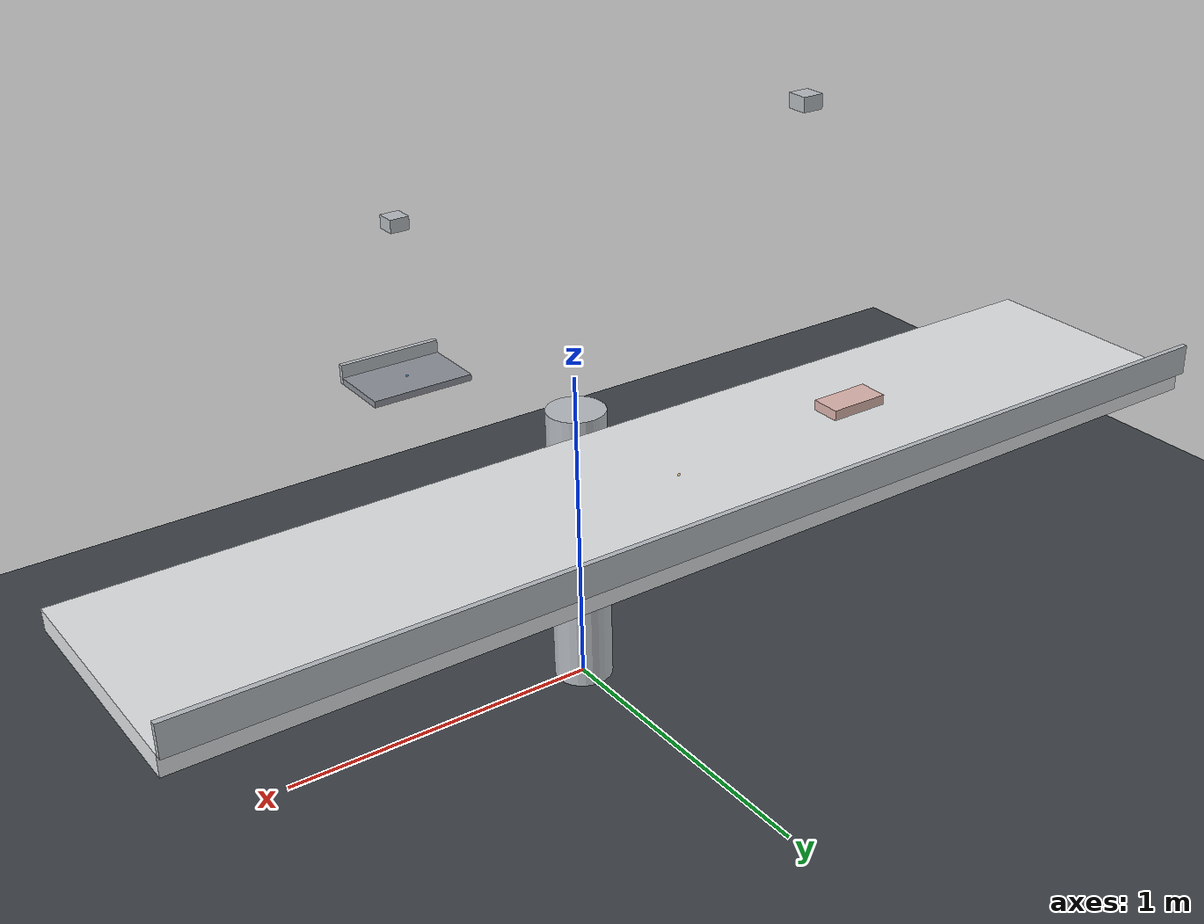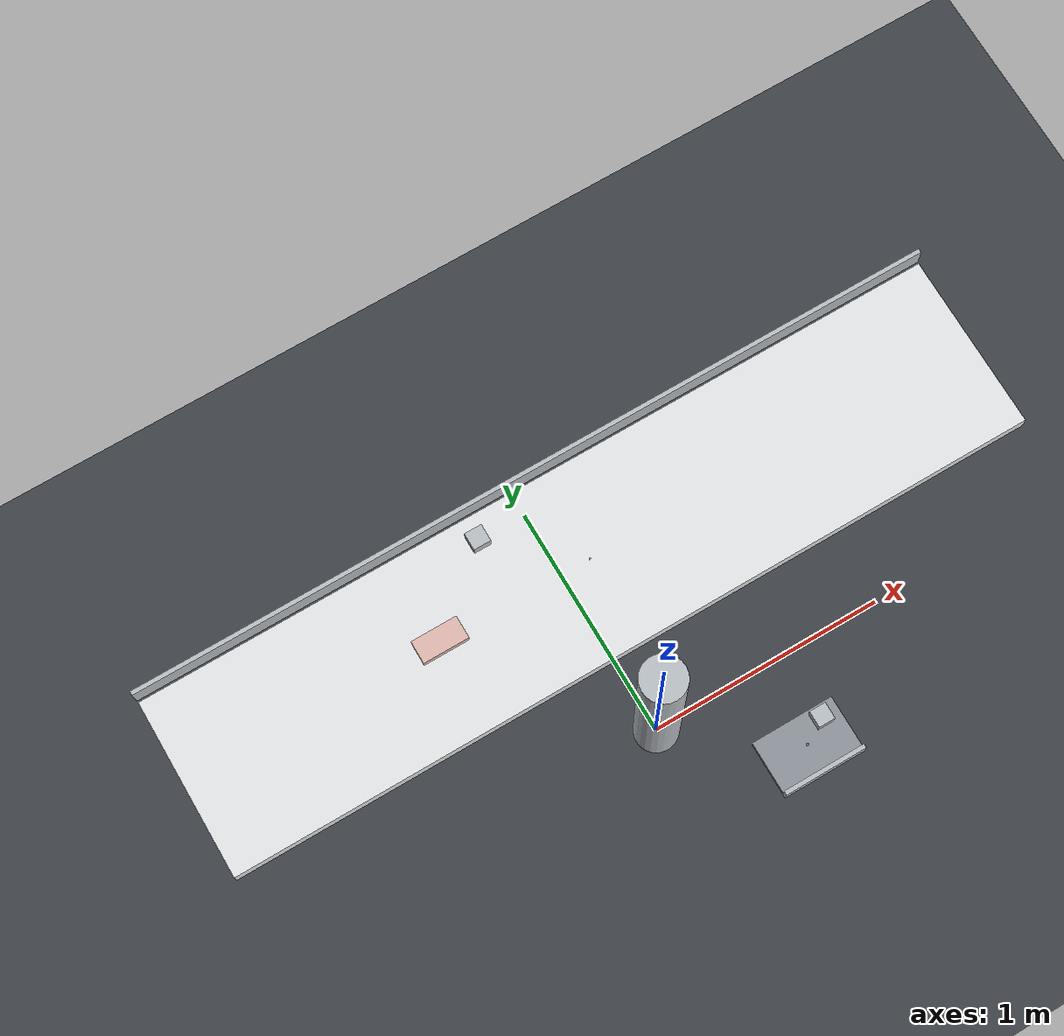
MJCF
<mujoco model="meat_cell">
  <compiler angle="radian" autolimits="true"/>
  <option timestep="0.002" integrator="implicitfast" cone="elliptic" noslip_iterations="3"/>

  <!-- Offscreen buffer must be declared here; the default 640x480 caps Renderer size. -->
  <visual>
    <global offwidth="1280" offheight="960"/>
  </visual>

  <default>
    <default class="cell_visual">
      <geom group="2" contype="0" conaffinity="0" density="0"/>
    </default>
    <!-- Geoms that both render and collide. Group 3 is hidden by the renderer,
         which is why these must stay in the default group. -->
    <default class="cell_solid">
      <geom group="0" condim="4" solref="0.008 1" solimp="0.95 0.99 0.001"/>
    </default>
  </default>

  <asset>
    <texture name="grid" type="2d" builtin="checker" rgb1="0.22 0.24 0.26" rgb2="0.26 0.28 0.30"
             width="300" height="300"/>
    <material name="grid" texture="grid" texrepeat="8 8" reflectance="0.05"/>
    <material name="belt_mat" rgba="0.88 0.89 0.90 1"/>
    <material name="steel" rgba="0.72 0.74 0.76 1"/>
    <material name="slab_mat" rgba="0.87 0.71 0.68 1"/>
    <material name="lane_mat" rgba="0.55 0.57 0.60 1"/>
  </asset>

  <worldbody>
    <light name="key" pos="0.4 0.2 2.4" dir="0 0 -1" diffuse="0.8 0.8 0.8"/>
    <light name="fill" pos="-0.8 1.2 2.0" dir="0.3 -0.5 -1" diffuse="0.3 0.3 0.3"/>
    <geom name="floor" type="plane" size="4 4 0.05" material="grid" class="cell_solid"/>

    <!-- Arm pedestal. The UR5e base attaches at arm_mount. -->
    <body name="pedestal" pos="0 0 0">
      <geom name="pedestal_col" type="cylinder" size="0.09 0.45" pos="0 0 0.45"
            material="steel" class="cell_solid"/>
      <site name="arm_mount" pos="0 0 0.90" quat="1 0 0 0"/>
    </body>

    <body name="belt" pos="0 0.50 0.87">
      <joint name="belt_x" type="slide" axis="1 0 0" range="-3 3" damping="0" armature="1"/>
      <geom name="belt_surface" type="box" size="1.6 0.35 0.03" material="belt_mat"
            friction="0.55 0.02 0.001" class="cell_solid" mass="40"/>
      <site name="belt_origin" pos="0 0 0.03" size="0.004" rgba="0.9 0.6 0.2 0.6"/>
    </body>

    <geom name="rail_far" type="box" pos="0 0.865 0.945" size="1.6 0.008 0.045"
          material="steel" class="cell_solid"/>

    <body name="slab" pos="-0.60 0.50 0.945">
      <freejoint name="slab_free"/>
      <geom name="slab_geom" type="box" size="0.090 0.045 0.015" material="slab_mat"
            mass="0.5" friction="0.35 0.01 0.001" class="cell_solid"/>
      <site name="slab_centre" size="0.004" rgba="0.2 0.9 0.4 0.8"/>
    </body>

    <body name="cutter_lane" pos="0.30 -0.45 0.90">
      <geom name="lane_floor" type="box" size="0.16 0.10 0.010" pos="0 0 0.010"
            material="lane_mat" class="cell_solid"/>
      <geom name="lane_datum" type="box" size="0.16 0.008 0.030" pos="0 -0.108 0.030"
            material="steel" class="cell_solid"/>
      <site name="lane_centre" pos="0 0 0.020" size="0.005" rgba="0.2 0.6 0.9 0.8"/>
    </body>

    <body name="overhead_cam_mount" pos="-0.40 0.50 1.85">
      <geom name="cam_body" type="box" size="0.03 0.03 0.02" material="steel" class="cell_visual"/>
      <camera name="overhead" pos="0 0 0" quat="1 0 0 0" fovy="52"/>
    </body>

    <body name="verify_cam_mount" pos="0.30 -0.45 1.40">
      <geom name="verify_cam_body" type="box" size="0.03 0.03 0.02" material="steel" class="cell_visual"/>
      <camera name="verify" pos="0 0 0" quat="1 0 0 0" fovy="52"/>
    </body>
  </worldbody>

  <actuator>
    <velocity name="belt_drive" joint="belt_x" kv="2000" ctrlrange="-1.0 1.0"/>
  </actuator>

  <sensor>
    <jointpos name="belt_encoder" joint="belt_x"/>
    <jointvel name="belt_speed" joint="belt_x"/>
    <framepos name="slab_pos" objtype="site" objname="slab_centre"/>
    <framequat name="slab_quat" objtype="body" objname="slab"/>
    <framepos name="lane_pos" objtype="site" objname="lane_centre"/>
  </sensor>
</mujoco>
